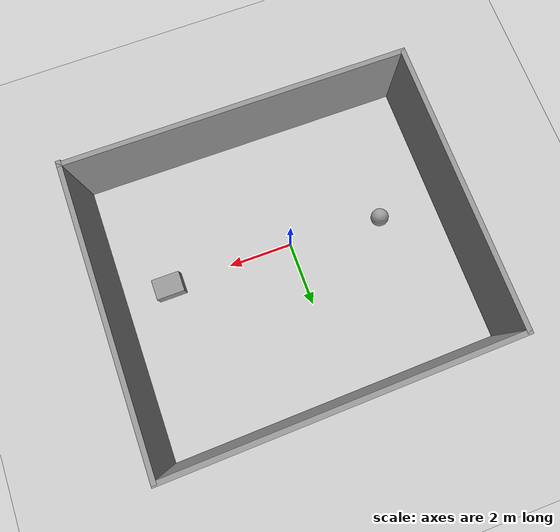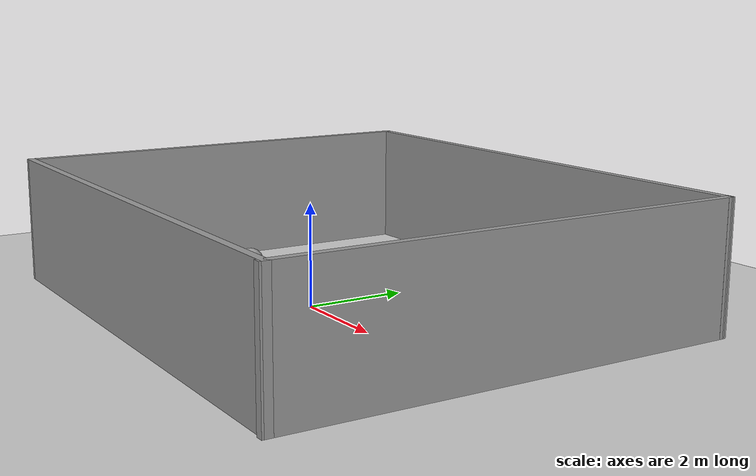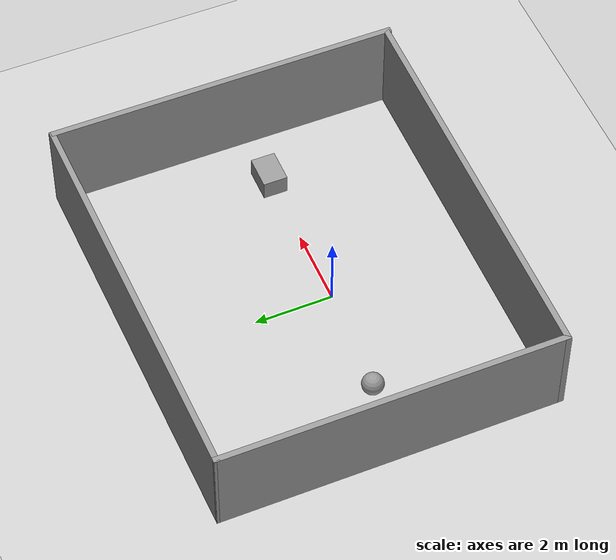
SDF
<sdf version="1.7">
 <world name="default">
  <light name="sun" type="directional">
   <pose>0 0 10 0 -0 0</pose>
   <diffuse>0.8 0.8 0.8 1</diffuse>
   <specular>0.2 0.2 0.2 1</specular>
   <attenuation>
    <range>1000</range>
    <constant>0.9</constant>
    <linear>0.01</linear>
    <quadratic>0.001</quadratic>
   </attenuation>
   <direction>-0.5 0.1 -0.9</direction>
   <spot><inner_angle>0</inner_angle><outer_angle>0</outer_angle><falloff>0</falloff></spot>
  </light>
  <model name="ground_plane">
   <static>1</static>
   <link name="link">
    <collision name="collision">
     <geometry><plane><normal>0 0 1</normal><size>100 100</size></plane></geometry>
     <surface>
      <contact><collide_bitmask>65535</collide_bitmask></contact>
      <friction><ode><mu>100</mu><mu2>50</mu2></ode></friction>
     </surface>
    </collision>
    <visual name="visual">
     <cast_shadows>0</cast_shadows>
     <geometry><plane><normal>0 0 1</normal><size>100 100</size></plane></geometry>
     <material>
      <script><uri>file://media/materials/scripts/gazebo.material</uri><name>Gazebo/Grey</name></script>
     </material>
    </visual>
   </link>
  </model>
  <gravity>0 0 -9.8</gravity>
  <magnetic_field>6e-06 2.3e-05 -4.2e-05</magnetic_field>
  <atmosphere type="adiabatic"/>
  <physics type="ode">
   <max_step_size>0.001</max_step_size>
   <real_time_factor>1</real_time_factor>
   <real_time_update_rate>1000</real_time_update_rate>
  </physics>
  <scene><ambient>0.4 0.4 0.4 1</ambient><background>0.7 0.7 0.7 1</background><shadows>1</shadows></scene>
  <audio><device>default</device></audio>
  <spherical_coordinates>
   <surface_model>EARTH_WGS84</surface_model>
   <latitude_deg>0</latitude_deg>
   <longitude_deg>0</longitude_deg>
   <elevation>0</elevation>
   <heading_deg>0</heading_deg>
  </spherical_coordinates>
  <model name="test">
   <pose>0.30477 0.610397 0 0 -0 0</pose>
   <link name="Wall_0">
    <collision name="Wall_0_Collision">
     <geometry><box><size>8.75 0.15 2.5</size></box></geometry>
     <pose>0 0 1.25 0 -0 0</pose>
    </collision>
    <visual name="Wall_0_Visual">
     <pose>0 0 1.25 0 -0 0</pose>
     <geometry><box><size>8.75 0.15 2.5</size></box></geometry>
     <material>
      <script><uri>file://media/materials/scripts/gazebo.material</uri><name>Gazebo/Grey</name></script>
      <ambient>1 1 1 1</ambient>
     </material>
     <meta><layer>0</layer></meta>
    </visual>
    <pose>-5.13426 -0.057781 0 0 -0 1.5708</pose>
   </link>
   <link name="Wall_1">
    <collision name="Wall_1_Collision">
     <geometry><box><size>10.4205 0.15 2.5</size></box></geometry>
     <pose>0 0 1.25 0 -0 0</pose>
    </collision>
    <visual name="Wall_1_Visual">
     <pose>0 0 1.25 0 -0 0</pose>
     <geometry><box><size>10.4205 0.15 2.5</size></box></geometry>
     <material>
      <script><uri>file://media/materials/scripts/gazebo.material</uri><name>Gazebo/Grey</name></script>
      <ambient>1 1 1 1</ambient>
     </material>
     <meta><layer>0</layer></meta>
    </visual>
    <pose>0 4.34336 0 0 -0 0.019696</pose>
   </link>
   <link name="Wall_2">
    <collision name="Wall_2_Collision">
     <geometry><box><size>9 0.15 2.5</size></box></geometry>
     <pose>0 0 1.25 0 -0 0</pose>
    </collision>
    <visual name="Wall_2_Visual">
     <pose>0 0 1.25 0 -0 0</pose>
     <geometry><box><size>9 0.15 2.5</size></box></geometry>
     <material>
      <script><uri>file://media/materials/scripts/gazebo.material</uri><name>Gazebo/Grey</name></script>
      <ambient>1 1 1 1</ambient>
     </material>
     <meta><layer>0</layer></meta>
    </visual>
    <pose>5.13426 -0.020959 0 0 -0 -1.5708</pose>
   </link>
   <link name="Wall_3">
    <collision name="Wall_3_Collision">
     <geometry><box><size>10.4193 0.15 2.5</size></box></geometry>
     <pose>0 0 1.25 0 -0 0</pose>
    </collision>
    <visual name="Wall_3_Visual">
     <pose>0 0 1.25 0 -0 0</pose>
     <geometry><box><size>10.4193 0.15 2.5</size></box></geometry>
     <material>
      <script><uri>file://media/materials/scripts/gazebo.material</uri><name>Gazebo/Grey</name></script>
      <ambient>1 1 1 1</ambient>
     </material>
     <meta><layer>0</layer></meta>
    </visual>
    <pose>0 -4.38164 0 0 -0 3.13694</pose>
   </link>
   <static>1</static>
  </model>
  <model name="unit_box">
   <pose>3.93576 0.024891 0.257573 0 -0 6.5e-05</pose>
   <link name="link">
    <inertial>
     <mass>1</mass>
     <inertia>
      <ixx>0.166667</ixx>
      <ixy>0</ixy>
      <ixz>0</ixz>
      <iyy>0.166667</iyy>
      <iyz>0</iyz>
      <izz>0.166667</izz>
     </inertia>
    </inertial>
    <collision name="collision">
     <geometry><box><size>0.860731 0.626817 0.515146</size></box></geometry>
    </collision>
    <visual name="visual">
     <geometry><box><size>0.860731 0.626817 0.515146</size></box></geometry>
     <material>
      <script><name>Gazebo/Grey</name><uri>file://media/materials/scripts/gazebo.material</uri></script>
     </material>
    </visual>
   </link>
  </model>
  <model name="unit_sphere">
   <pose>-2.9048 0.19213 0.277555 0 -0 0</pose>
   <link name="link">
    <inertial>
     <mass>1</mass>
     <inertia><ixx>0.1</ixx><ixy>0</ixy><ixz>0</ixz><iyy>0.1</iyy><iyz>0</iyz><izz>0.1</izz></inertia>
    </inertial>
    <collision name="collision"><geometry><sphere><radius>0.277555</radius></sphere></geometry></collision>
    <visual name="visual">
     <geometry><sphere><radius>0.277555</radius></sphere></geometry>
     <material>
      <script><name>Gazebo/Grey</name><uri>file://media/materials/scripts/gazebo.material</uri></script>
     </material>
    </visual>
   </link>
  </model>
 </world>
</sdf>
